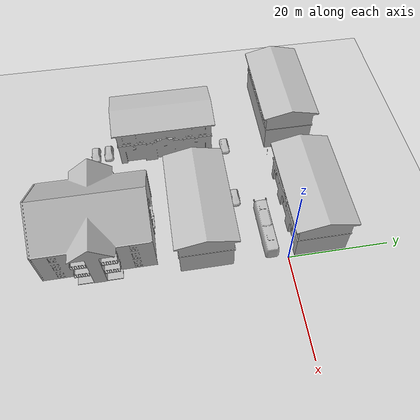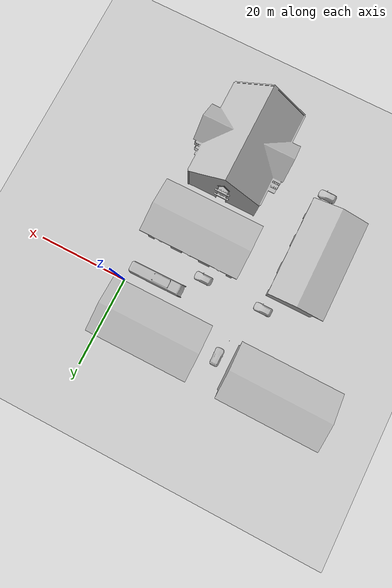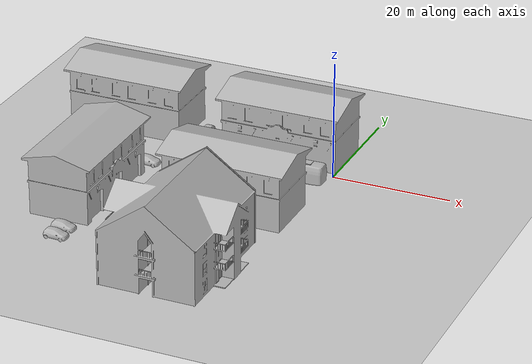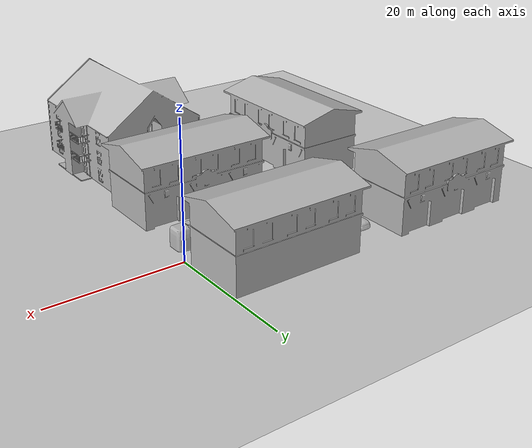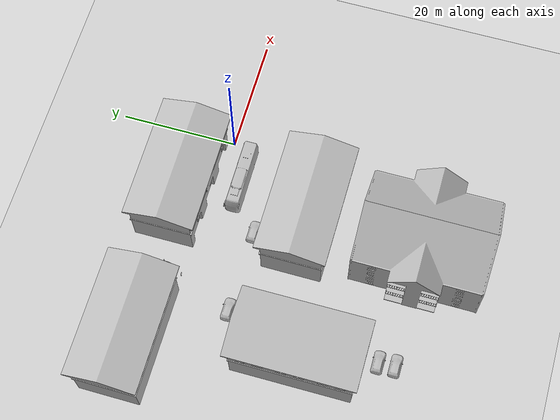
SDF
<sdf version="1.7">
 <world name="default">
  <light name="sun" type="directional">
   <pose>0 0 10 0 -0 0</pose>
   <diffuse>0.8 0.8 0.8 1</diffuse>
   <specular>0.2 0.2 0.2 1</specular>
   <attenuation>
    <range>1000</range>
    <constant>0.9</constant>
    <linear>0.01</linear>
    <quadratic>0.001</quadratic>
   </attenuation>
   <direction>-0.5 0.1 -0.9</direction>
   <spot><inner_angle>0</inner_angle><outer_angle>0</outer_angle><falloff>0</falloff></spot>
  </light>
  <model name="ground_plane">
   <static>1</static>
   <link name="link">
    <collision name="collision">
     <geometry><plane><normal>0 0 1</normal><size>100 100</size></plane></geometry>
     <surface><friction><ode><mu>100</mu><mu2>50</mu2></ode></friction></surface>
    </collision>
    <visual name="visual">
     <cast_shadows>0</cast_shadows>
     <geometry><plane><normal>0 0 1</normal><size>100 100</size></plane></geometry>
     <material>
      <script><uri>file://media/materials/scripts/gazebo.material</uri><name>Gazebo/Grey</name></script>
     </material>
    </visual>
   </link>
  </model>
  <gravity>0 0 -9.8</gravity>
  <magnetic_field>6e-06 2.3e-05 -4.2e-05</magnetic_field>
  <atmosphere type="adiabatic"/>
  <physics type="ode">
   <max_step_size>0.001</max_step_size>
   <real_time_factor>1</real_time_factor>
   <real_time_update_rate>1000</real_time_update_rate>
  </physics>
  <scene><ambient>0.4 0.4 0.4 1</ambient><background>0.7 0.7 0.7 1</background><shadows>1</shadows></scene>
  <spherical_coordinates>
   <surface_model>EARTH_WGS84</surface_model>
   <latitude_deg>0</latitude_deg>
   <longitude_deg>0</longitude_deg>
   <elevation>0</elevation>
   <heading_deg>0</heading_deg>
  </spherical_coordinates>
  <model name="fire_station">
   <static>1</static>
   <link name="link">
    <collision name="main">
     <pose>0 -0.135 5 0 -0 0</pose>
     <geometry><box><size>19.98 9.68 10</size></box></geometry>
    </collision>
    <collision name="front_top">
     <pose>0 4.957 7 0 -0 0</pose>
     <geometry><box><size>20 0.515 6</size></box></geometry>
    </collision>
    <collision name="column_0">
     <pose>9.333 4.957 2 0 -0 0</pose>
     <geometry><box><size>1.315 0.515 4</size></box></geometry>
    </collision>
    <collision name="column_1">
     <pose>3.33 4.957 2 0 -0 0</pose>
     <geometry><box><size>2.63 0.515 4</size></box></geometry>
    </collision>
    <collision name="column_2">
     <pose>-3.33 4.957 2 0 -0 0</pose>
     <geometry><box><size>2.63 0.515 4</size></box></geometry>
    </collision>
    <collision name="column_3">
     <pose>-9.333 4.957 2 0 -0 0</pose>
     <geometry><box><size>1.315 0.515 4</size></box></geometry>
    </collision>
    <collision name="roof_back">
     <pose>0 -2.742 10.467 0.25 -0 0</pose>
     <geometry><box><size>21.47 6.12 0.28</size></box></geometry>
    </collision>
    <collision name="roof_front">
     <pose>0 3.12 10.467 -0.25 0 0</pose>
     <geometry><box><size>21.47 6.12 0.28</size></box></geometry>
    </collision>
    <collision name="roof_base">
     <pose>0 0.188 9.705 0 -0 0</pose>
     <geometry><box><size>21.47 11.86 0.28</size></box></geometry>
    </collision>
    <collision name="roof_filling_0">
     <pose>0 0.188 9.985 0 -0 0</pose>
     <geometry><box><size>21.47 9.53 0.28</size></box></geometry>
    </collision>
    <collision name="roof_filling_1">
     <pose>0 0.188 10.14 0 -0 0</pose>
     <geometry><box><size>21.47 8.41 0.28</size></box></geometry>
    </collision>
    <collision name="roof_filling_2">
     <pose>0 0.188 10.42 0 -0 0</pose>
     <geometry><box><size>21.47 6.25 0.28</size></box></geometry>
    </collision>
    <collision name="roof_filling_3">
     <pose>0 0.188 10.7 0 -0 0</pose>
     <geometry><box><size>21.47 4.05 0.28</size></box></geometry>
    </collision>
    <collision name="roof_filling_4">
     <pose>0 0.188 10.98 0 -0 0</pose>
     <geometry><box><size>21.47 1.83 0.28</size></box></geometry>
    </collision>
    <visual name="visual">
     <geometry><mesh><uri>model://fire_station/meshes/fire_station.dae</uri></mesh></geometry>
    </visual>
   </link>
   <pose>-10.1999 6.41974 0 0 0 -3.13855</pose>
  </model>
  <model name="bus">
   <static>1</static>
   <link name="link">
    <collision name="collision">
     <geometry><mesh><scale>0.01 0.01 0.01</scale><uri>model://bus/meshes/bus.obj</uri></mesh></geometry>
    </collision>
    <visual name="visual">
     <geometry><mesh><scale>0.01 0.01 0.01</scale><uri>model://bus/meshes/bus.obj</uri></mesh></geometry>
    </visual>
   </link>
   <pose>-6.3695 -3.21295 0 0 0 -1.56222</pose>
  </model>
  <model name="hatchback">
   <static>1</static>
   <link name="link">
    <collision name="collision">
     <pose>0 0 0 0 -0 1.5708</pose>
     <geometry>
      <mesh><scale>0.0254 0.0254 0.0254</scale><uri>model://hatchback/meshes/hatchback.obj</uri></mesh>
     </geometry>
    </collision>
    <visual name="visual">
     <pose>0 0 0 0 -0 1.5708</pose>
     <geometry>
      <mesh><scale>0.0254 0.0254 0.0254</scale><uri>model://hatchback/meshes/hatchback.obj</uri></mesh>
     </geometry>
    </visual>
   </link>
   <pose>-24.9722 5.76397 0 0 0 -1.54975</pose>
  </model>
  <model name="hatchback_red">
   <static>1</static>
   <link name="link">
    <collision name="collision">
     <pose>0 0 0 0 -0 1.5708</pose>
     <geometry>
      <mesh><scale>0.0254 0.0254 0.0254</scale><uri>model://hatchback_red/meshes/hatchback.obj</uri></mesh>
     </geometry>
    </collision>
    <visual name="visual">
     <pose>0 0 0 0 -0 1.5708</pose>
     <geometry>
      <mesh><scale>0.0254 0.0254 0.0254</scale><uri>model://hatchback_red/meshes/hatchback.obj</uri></mesh>
     </geometry>
    </visual>
   </link>
   <pose>-15.3595 -7.92557 0 0 -0 0</pose>
  </model>
  <model name="hatchback_blue">
   <static>1</static>
   <link name="link">
    <collision name="collision">
     <pose>0 0 0 0 -0 1.5708</pose>
     <geometry>
      <mesh><scale>0.0254 0.0254 0.0254</scale><uri>model://hatchback_blue/meshes/hatchback.obj</uri></mesh>
     </geometry>
    </collision>
    <visual name="visual">
     <pose>0 0 0 0 -0 1.5708</pose>
     <geometry>
      <mesh><scale>0.0254 0.0254 0.0254</scale><uri>model://hatchback_blue/meshes/hatchback.obj</uri></mesh>
     </geometry>
    </visual>
   </link>
   <pose>-29.5252 -7.80873 0 0 -0 0</pose>
  </model>
  <model name="Stop Sign">
   <static>1</static>
   <link name="link">
    <collision name="collision">
     <geometry><mesh><uri>model://stop_sign/meshes/stop_sign.dae</uri></mesh></geometry>
    </collision>
    <visual name="visual">
     <geometry><mesh><uri>model://stop_sign/meshes/stop_sign.dae</uri></mesh></geometry>
     <material>
      <script>
       <uri>model://stop_sign/materials/scripts</uri>
       <uri>model://stop_sign/materials/textures</uri>
       <name>StopSign/Diffuse</name>
      </script>
     </material>
    </visual>
   </link>
   <pose>-25.7585 1.31644 0 0 0 -3.12854</pose>
  </model>
  <model name="fire_station_0">
   <static>1</static>
   <link name="link">
    <collision name="main">
     <pose>0 -0.135 5 0 -0 0</pose>
     <geometry><box><size>19.98 9.68 10</size></box></geometry>
    </collision>
    <collision name="front_top">
     <pose>0 4.957 7 0 -0 0</pose>
     <geometry><box><size>20 0.515 6</size></box></geometry>
    </collision>
    <collision name="column_0">
     <pose>9.333 4.957 2 0 -0 0</pose>
     <geometry><box><size>1.315 0.515 4</size></box></geometry>
    </collision>
    <collision name="column_1">
     <pose>3.33 4.957 2 0 -0 0</pose>
     <geometry><box><size>2.63 0.515 4</size></box></geometry>
    </collision>
    <collision name="column_2">
     <pose>-3.33 4.957 2 0 -0 0</pose>
     <geometry><box><size>2.63 0.515 4</size></box></geometry>
    </collision>
    <collision name="column_3">
     <pose>-9.333 4.957 2 0 -0 0</pose>
     <geometry><box><size>1.315 0.515 4</size></box></geometry>
    </collision>
    <collision name="roof_back">
     <pose>0 -2.742 10.467 0.25 -0 0</pose>
     <geometry><box><size>21.47 6.12 0.28</size></box></geometry>
    </collision>
    <collision name="roof_front">
     <pose>0 3.12 10.467 -0.25 0 0</pose>
     <geometry><box><size>21.47 6.12 0.28</size></box></geometry>
    </collision>
    <collision name="roof_base">
     <pose>0 0.188 9.705 0 -0 0</pose>
     <geometry><box><size>21.47 11.86 0.28</size></box></geometry>
    </collision>
    <collision name="roof_filling_0">
     <pose>0 0.188 9.985 0 -0 0</pose>
     <geometry><box><size>21.47 9.53 0.28</size></box></geometry>
    </collision>
    <collision name="roof_filling_1">
     <pose>0 0.188 10.14 0 -0 0</pose>
     <geometry><box><size>21.47 8.41 0.28</size></box></geometry>
    </collision>
    <collision name="roof_filling_2">
     <pose>0 0.188 10.42 0 -0 0</pose>
     <geometry><box><size>21.47 6.25 0.28</size></box></geometry>
    </collision>
    <collision name="roof_filling_3">
     <pose>0 0.188 10.7 0 -0 0</pose>
     <geometry><box><size>21.47 4.05 0.28</size></box></geometry>
    </collision>
    <collision name="roof_filling_4">
     <pose>0 0.188 10.98 0 -0 0</pose>
     <geometry><box><size>21.47 1.83 0.28</size></box></geometry>
    </collision>
    <visual name="visual">
     <geometry><mesh><uri>model://fire_station/meshes/fire_station.dae</uri></mesh></geometry>
    </visual>
   </link>
   <pose>-10.3011 -15.9209 0 0 -0 0</pose>
  </model>
  <model name="fire_station_1">
   <static>1</static>
   <link name="link">
    <collision name="main">
     <pose>0 -0.135 5 0 -0 0</pose>
     <geometry><box><size>19.98 9.68 10</size></box></geometry>
    </collision>
    <collision name="front_top">
     <pose>0 4.957 7 0 -0 0</pose>
     <geometry><box><size>20 0.515 6</size></box></geometry>
    </collision>
    <collision name="column_0">
     <pose>9.333 4.957 2 0 -0 0</pose>
     <geometry><box><size>1.315 0.515 4</size></box></geometry>
    </collision>
    <collision name="column_1">
     <pose>3.33 4.957 2 0 -0 0</pose>
     <geometry><box><size>2.63 0.515 4</size></box></geometry>
    </collision>
    <collision name="column_2">
     <pose>-3.33 4.957 2 0 -0 0</pose>
     <geometry><box><size>2.63 0.515 4</size></box></geometry>
    </collision>
    <collision name="column_3">
     <pose>-9.333 4.957 2 0 -0 0</pose>
     <geometry><box><size>1.315 0.515 4</size></box></geometry>
    </collision>
    <collision name="roof_back">
     <pose>0 -2.742 10.467 0.25 -0 0</pose>
     <geometry><box><size>21.47 6.12 0.28</size></box></geometry>
    </collision>
    <collision name="roof_front">
     <pose>0 3.12 10.467 -0.25 0 0</pose>
     <geometry><box><size>21.47 6.12 0.28</size></box></geometry>
    </collision>
    <collision name="roof_base">
     <pose>0 0.188 9.705 0 -0 0</pose>
     <geometry><box><size>21.47 11.86 0.28</size></box></geometry>
    </collision>
    <collision name="roof_filling_0">
     <pose>0 0.188 9.985 0 -0 0</pose>
     <geometry><box><size>21.47 9.53 0.28</size></box></geometry>
    </collision>
    <collision name="roof_filling_1">
     <pose>0 0.188 10.14 0 -0 0</pose>
     <geometry><box><size>21.47 8.41 0.28</size></box></geometry>
    </collision>
    <collision name="roof_filling_2">
     <pose>0 0.188 10.42 0 -0 0</pose>
     <geometry><box><size>21.47 6.25 0.28</size></box></geometry>
    </collision>
    <collision name="roof_filling_3">
     <pose>0 0.188 10.7 0 -0 0</pose>
     <geometry><box><size>21.47 4.05 0.28</size></box></geometry>
    </collision>
    <collision name="roof_filling_4">
     <pose>0 0.188 10.98 0 -0 0</pose>
     <geometry><box><size>21.47 1.83 0.28</size></box></geometry>
    </collision>
    <visual name="visual">
     <geometry><mesh><uri>model://fire_station/meshes/fire_station.dae</uri></mesh></geometry>
    </visual>
   </link>
   <pose>-37.988 6.07086 0 0 -0 0</pose>
  </model>
  <model name="fire_station_2">
   <static>1</static>
   <link name="link">
    <collision name="main">
     <pose>0 -0.135 5 0 -0 0</pose>
     <geometry><box><size>19.98 9.68 10</size></box></geometry>
    </collision>
    <collision name="front_top">
     <pose>0 4.957 7 0 -0 0</pose>
     <geometry><box><size>20 0.515 6</size></box></geometry>
    </collision>
    <collision name="column_0">
     <pose>9.333 4.957 2 0 -0 0</pose>
     <geometry><box><size>1.315 0.515 4</size></box></geometry>
    </collision>
    <collision name="column_1">
     <pose>3.33 4.957 2 0 -0 0</pose>
     <geometry><box><size>2.63 0.515 4</size></box></geometry>
    </collision>
    <collision name="column_2">
     <pose>-3.33 4.957 2 0 -0 0</pose>
     <geometry><box><size>2.63 0.515 4</size></box></geometry>
    </collision>
    <collision name="column_3">
     <pose>-9.333 4.957 2 0 -0 0</pose>
     <geometry><box><size>1.315 0.515 4</size></box></geometry>
    </collision>
    <collision name="roof_back">
     <pose>0 -2.742 10.467 0.25 -0 0</pose>
     <geometry><box><size>21.47 6.12 0.28</size></box></geometry>
    </collision>
    <collision name="roof_front">
     <pose>0 3.12 10.467 -0.25 0 0</pose>
     <geometry><box><size>21.47 6.12 0.28</size></box></geometry>
    </collision>
    <collision name="roof_base">
     <pose>0 0.188 9.705 0 -0 0</pose>
     <geometry><box><size>21.47 11.86 0.28</size></box></geometry>
    </collision>
    <collision name="roof_filling_0">
     <pose>0 0.188 9.985 0 -0 0</pose>
     <geometry><box><size>21.47 9.53 0.28</size></box></geometry>
    </collision>
    <collision name="roof_filling_1">
     <pose>0 0.188 10.14 0 -0 0</pose>
     <geometry><box><size>21.47 8.41 0.28</size></box></geometry>
    </collision>
    <collision name="roof_filling_2">
     <pose>0 0.188 10.42 0 -0 0</pose>
     <geometry><box><size>21.47 6.25 0.28</size></box></geometry>
    </collision>
    <collision name="roof_filling_3">
     <pose>0 0.188 10.7 0 -0 0</pose>
     <geometry><box><size>21.47 4.05 0.28</size></box></geometry>
    </collision>
    <collision name="roof_filling_4">
     <pose>0 0.188 10.98 0 -0 0</pose>
     <geometry><box><size>21.47 1.83 0.28</size></box></geometry>
    </collision>
    <visual name="visual">
     <geometry><mesh><uri>model://fire_station/meshes/fire_station.dae</uri></mesh></geometry>
    </visual>
   </link>
   <pose>-33.6072 -20.8368 0 0 0 -1.56637</pose>
  </model>
  <model name="apartment">
   <static>1</static>
   <link name="link">
    <collision name="collision">
     <geometry><mesh><uri>model://apartment/meshes/apartment.dae</uri></mesh></geometry>
    </collision>
    <visual name="visual">
     <geometry><mesh><uri>model://apartment/meshes/apartment.dae</uri></mesh></geometry>
    </visual>
   </link>
   <pose>-10.4819 -35.9703 0 0 -0 0</pose>
  </model>
  <model name="hatchback_0">
   <static>1</static>
   <link name="link">
    <collision name="collision">
     <pose>0 0 0 0 -0 1.5708</pose>
     <geometry>
      <mesh><scale>0.0254 0.0254 0.0254</scale><uri>model://hatchback/meshes/hatchback.obj</uri></mesh>
     </geometry>
    </collision>
    <visual name="visual">
     <pose>0 0 0 0 -0 1.5708</pose>
     <geometry>
      <mesh><scale>0.0254 0.0254 0.0254</scale><uri>model://hatchback/meshes/hatchback.obj</uri></mesh>
     </geometry>
    </visual>
   </link>
   <pose>-31.4859 -33.5133 0 0 -0 0</pose>
  </model>
  <model name="hatchback_1">
   <static>1</static>
   <link name="link">
    <collision name="collision">
     <pose>0 0 0 0 -0 1.5708</pose>
     <geometry>
      <mesh><scale>0.0254 0.0254 0.0254</scale><uri>model://hatchback/meshes/hatchback.obj</uri></mesh>
     </geometry>
    </collision>
    <visual name="visual">
     <pose>0 0 0 0 -0 1.5708</pose>
     <geometry>
      <mesh><scale>0.0254 0.0254 0.0254</scale><uri>model://hatchback/meshes/hatchback.obj</uri></mesh>
     </geometry>
    </visual>
   </link>
   <pose>-31.3304 -36.3124 0 0 -0 0</pose>
  </model>
 </world>
</sdf>
